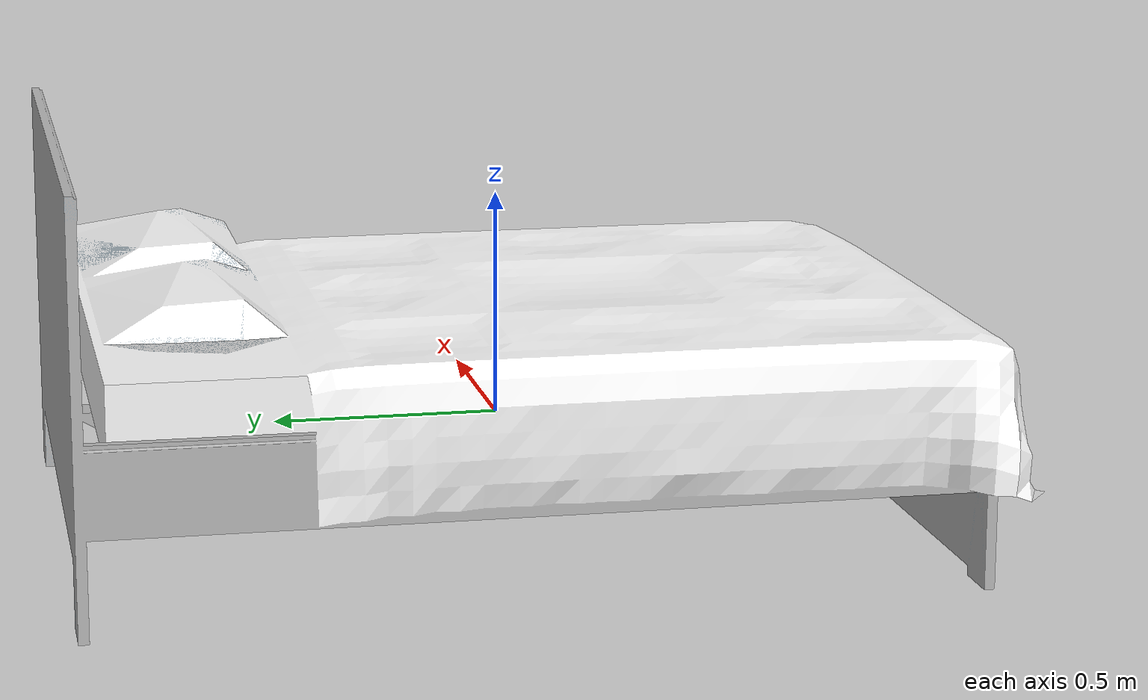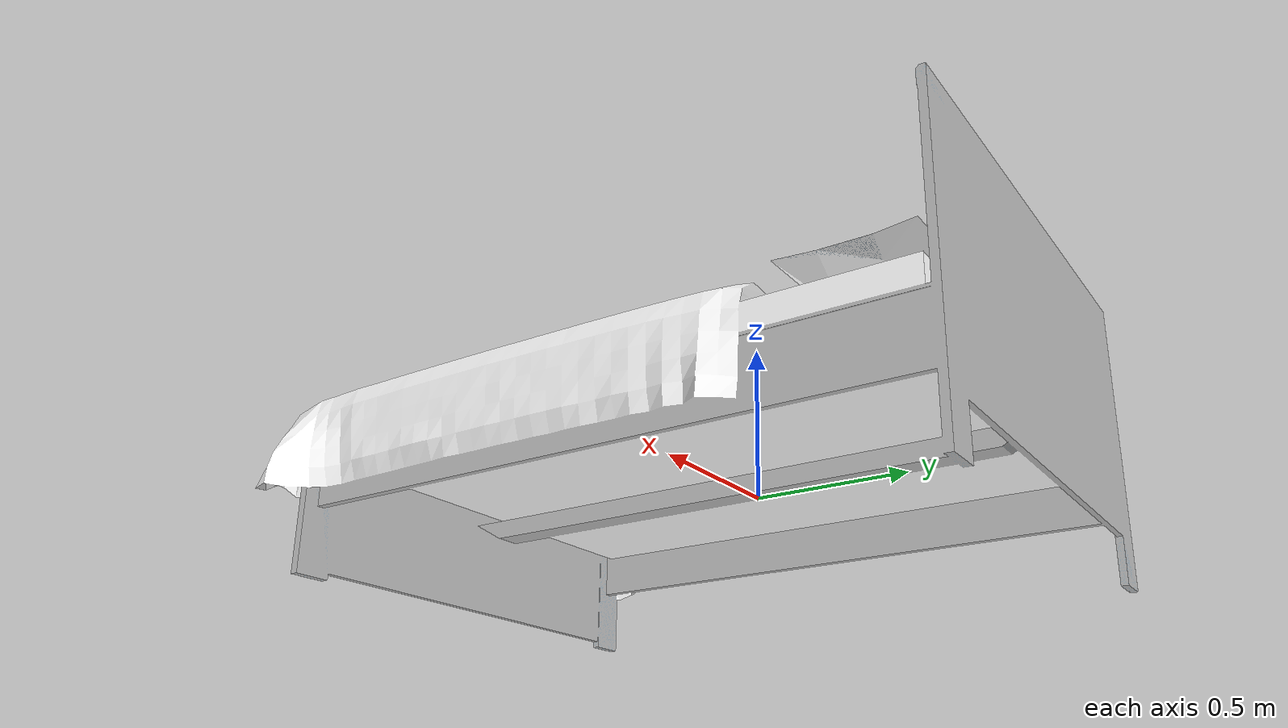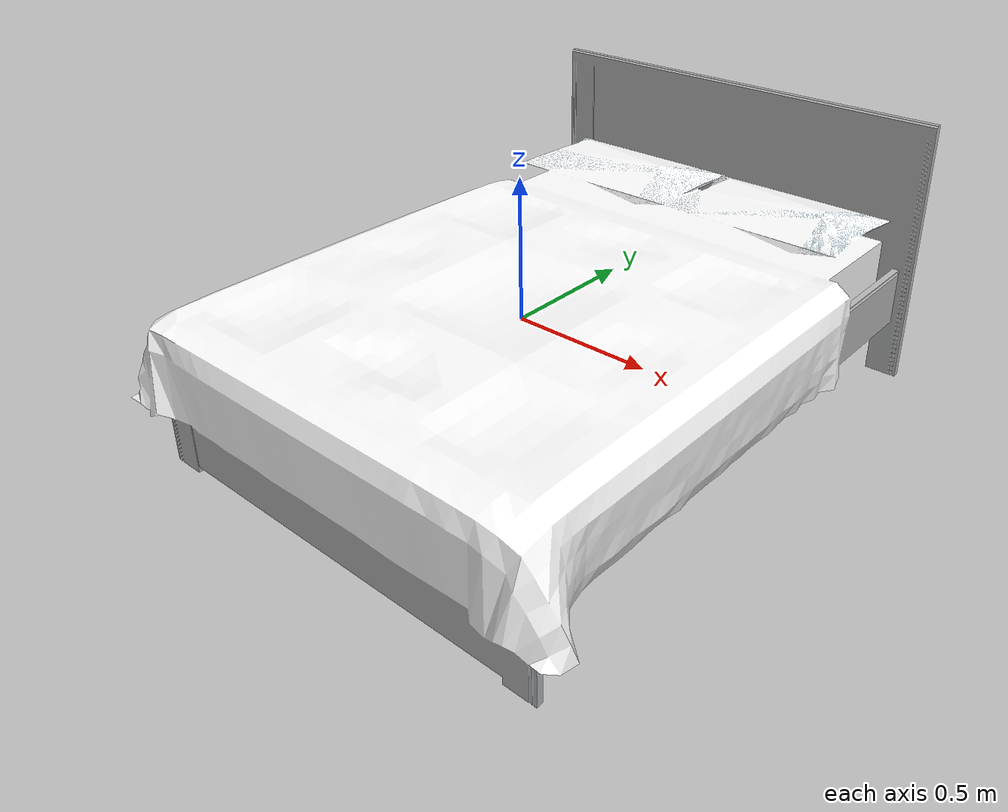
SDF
<?xml version='1.0'?>
<sdf version='1.6'>
  <model name='bed'>
    <link name='link_0'>
      <pose frame=''>0 0 0 0 -0 0</pose>
      <inertial>
        <pose frame=''>0.2 0 0 0 -0 0</pose>
        <mass>30</mass>
        <inertia>
          <ixx>12.9999948</ixx>
          <ixy>0</ixy>
          <ixz>0</ixz>
          <iyy>7.29999708</iyy>
          <iyz>0</iyz>
          <izz>18.4999926</izz>
        </inertia>
      </inertial>
      <visual name='visual'>
        <pose frame=''>-1.35 -8 -0.3 0 -0 -0</pose>
        <geometry>
          <mesh>
            <uri>file://isr-testbed/bed/bed.dae</uri>
            <scale>1 1 1</scale>
          </mesh>
        </geometry>
        <cast_shadows>1</cast_shadows>
        <transparency>0</transparency>
      </visual>
      <collision name='collision'>
        <laser_retro>0</laser_retro>
        <max_contacts>10</max_contacts>
        <pose frame=''>0.2 0 0 0 -0 0</pose>
        <geometry>
          <box>
            <size>1.6 2.2 0.6</size>
          </box>
        </geometry>
        <surface>
          <friction>
            <ode>
              <mu>1</mu>
              <mu2>1</mu2>
              <fdir1>0 0 0</fdir1>
              <slip1>0</slip1>
              <slip2>0</slip2>
            </ode>
            <torsional>
              <coefficient>1</coefficient>
              <patch_radius>0</patch_radius>
              <surface_radius>0</surface_radius>
              <use_patch_radius>1</use_patch_radius>
              <ode>
                <slip>0</slip>
              </ode>
            </torsional>
          </friction>
          <bounce>
            <restitution_coefficient>0</restitution_coefficient>
            <threshold>1e+06</threshold>
          </bounce>
          <contact>
            <collide_without_contact>0</collide_without_contact>
            <collide_without_contact_bitmask>1</collide_without_contact_bitmask>
            <collide_bitmask>1</collide_bitmask>
            <ode>
              <soft_cfm>0</soft_cfm>
              <soft_erp>0.2</soft_erp>
              <kp>1e+13</kp>
              <kd>1</kd>
              <max_vel>0.01</max_vel>
              <min_depth>0</min_depth>
            </ode>
            <bullet>
              <split_impulse>1</split_impulse>
              <split_impulse_penetration_threshold>-0.01</split_impulse_penetration_threshold>
              <soft_cfm>0</soft_cfm>
              <soft_erp>0.2</soft_erp>
              <kp>1e+13</kp>
              <kd>1</kd>
            </bullet>
          </contact>
        </surface>
      </collision>
    </link>
    <static>0</static> <!-- center has an offset so will not behave properly if this is set to 0 -->
    <allow_auto_disable>1</allow_auto_disable>
  </model>
</sdf>
